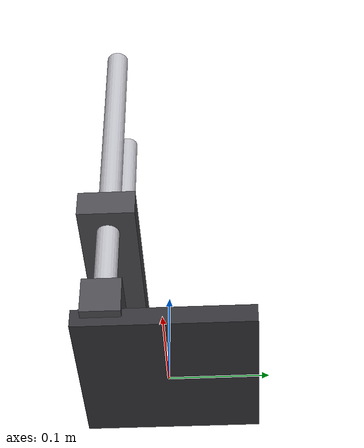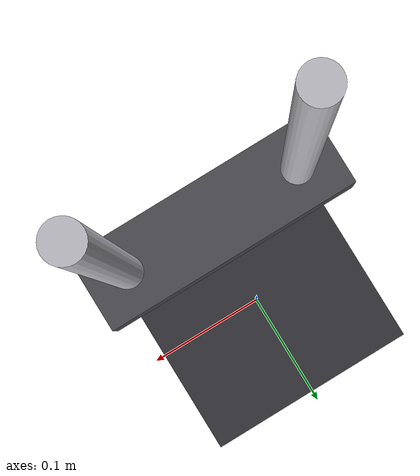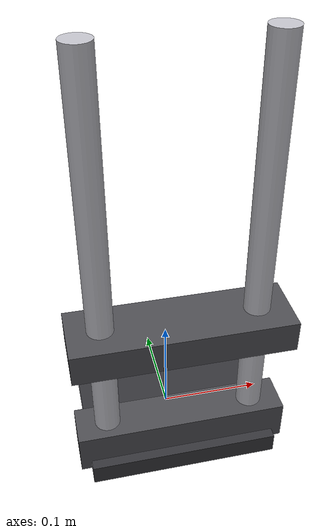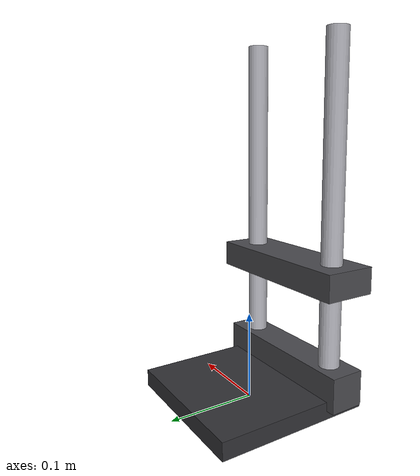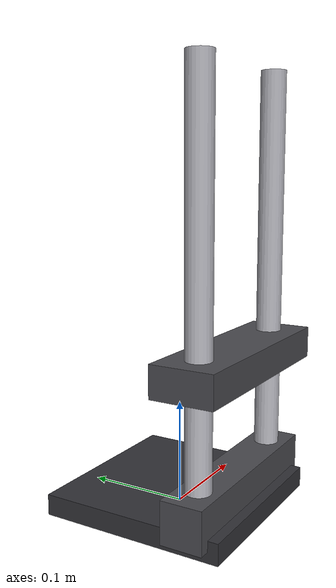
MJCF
<?xml version="1.0" encoding="utf-8"?>
<mujoco model="tensile_testing_machine">
  <compiler angle="radian" autolimits="true"/>
  <default>
    <default class="body"><geom contype="1" conaffinity="1"/></default>
  </default>
  <worldbody>
    <body name="base">
      <geom type="box" size="0.09 0.09 0.01" pos="0 0 0.01" rgba="0.2 0.2 0.22 1" class="body"/>
      <geom type="cylinder" size="0.012 0.20" pos="-0.07 -0.06 0.21" rgba="0.75 0.75 0.78 1" class="body"/>
      <geom type="cylinder" size="0.012 0.20" pos="0.07 -0.06 0.21" rgba="0.75 0.75 0.78 1" class="body"/>
      <geom type="box" size="0.10 0.02 0.02" pos="0 -0.06 0.03" rgba="0.3 0.3 0.32 1" class="body"/>
      <body name="crosshead" pos="0 -0.06 0.15">
        <joint name="crosshead_joint" type="slide" axis="0 0 1" range="0.05 0.35" damping="1.0" frictionloss="0.3"/>
  <geom type="box" size="0.10 0.03 0.015" pos="0 0 0" rgba="0.3 0.3 0.32 1" class="body"/>
      </body>
    </body>
  </worldbody>
</mujoco>
